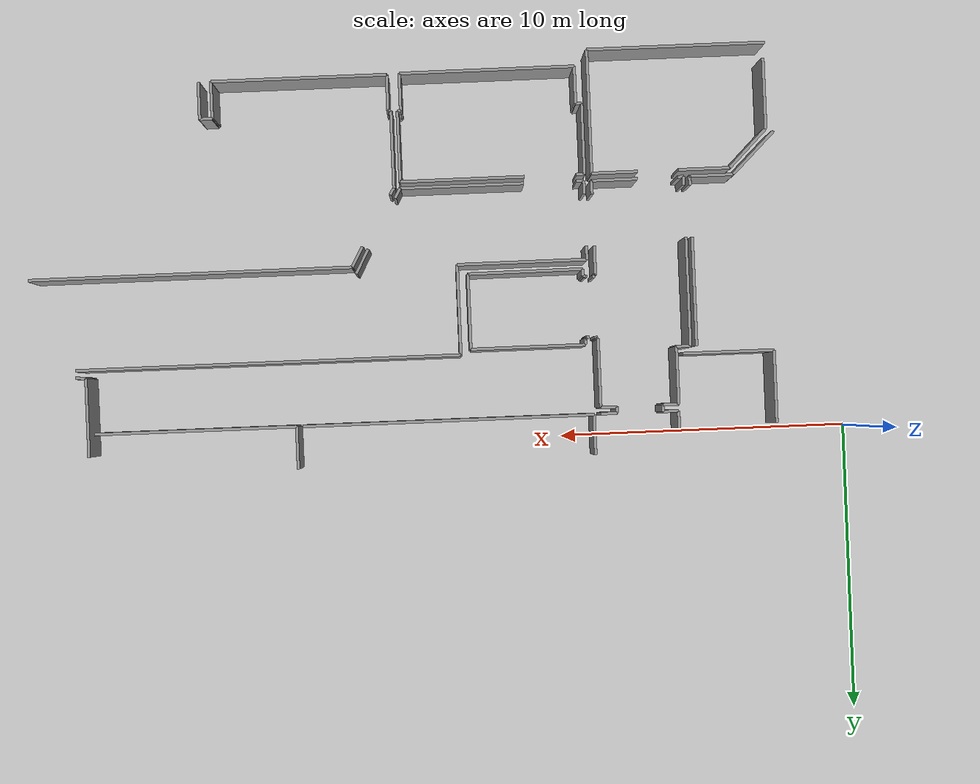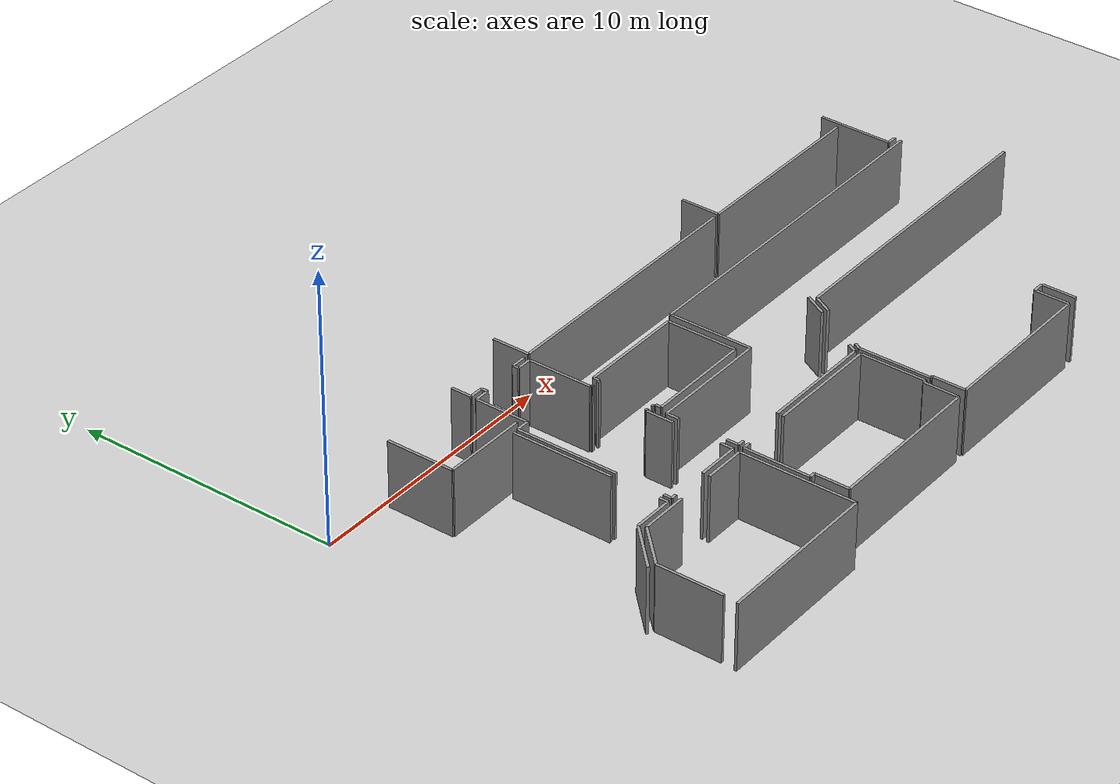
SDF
<sdf version="1.6">
 <world name="default">
  <model name="ground_plane">
   <static>1</static>
   <link name="link">
    <collision name="collision">
     <geometry><plane><normal>0 0 1</normal><size>100 100</size></plane></geometry>
     <surface><friction><ode><mu>100</mu><mu2>50</mu2></ode></friction></surface>
    </collision>
    <visual name="visual">
     <cast_shadows>0</cast_shadows>
     <geometry><plane><normal>0 0 1</normal><size>100 100</size></plane></geometry>
     <material>
      <script><uri>file://media/materials/scripts/gazebo.material</uri><name>Gazebo/Grey</name></script>
     </material>
    </visual>
   </link>
  </model>
  <model name="0510040943_A-40">
   <static>1</static>
   <link name="Wall_208">
    <collision name="Wall_208_Collision">
     <geometry><box><size>3.75323489116 0.1 2.5</size></box></geometry>
     <pose>1.87661744558 0 1.25 0 0 0</pose>
    </collision>
    <visual name="Wall_208_Visual">
     <pose>1.87661744558 0 1.25 0 0 0</pose>
     <geometry><box><size>3.75323489116 0.1 2.5</size></box></geometry>
     <material>
      <script><uri>file://media/materials/scripts/gazebo.material</uri><name>Gazebo/Grey</name></script>
      <ambient>1 1 1 1</ambient>
     </material>
    </visual>
    <pose>61.4806921398 -16.3586542853 0 0 0 -1.57079632679</pose>
   </link>
   <link name="Wall_209">
    <collision name="Wall_209_Collision">
     <geometry><box><size>0.314862739128 0.1 2.5</size></box></geometry>
     <pose>0.157431369564 0 1.25 0 0 0</pose>
    </collision>
    <visual name="Wall_209_Visual">
     <pose>0.157431369564 0 1.25 0 0 0</pose>
     <geometry><box><size>0.314862739128 0.1 2.5</size></box></geometry>
     <material>
      <script><uri>file://media/materials/scripts/gazebo.material</uri><name>Gazebo/Grey</name></script>
      <ambient>1 1 1 1</ambient>
     </material>
    </visual>
    <pose>61.4806921398 -21.9002131222 0 0 0 -1.57079632679</pose>
   </link>
   <link name="Wall_210">
    <collision name="Wall_210_Collision">
     <geometry><box><size>1.50948901406 0.1 2.5</size></box></geometry>
     <pose>0.754744507028 0 1.25 0 0 0</pose>
    </collision>
    <visual name="Wall_210_Visual">
     <pose>0.754744507028 0 1.25 0 0 0</pose>
     <geometry><box><size>1.50948901406 0.1 2.5</size></box></geometry>
     <material>
      <script><uri>file://media/materials/scripts/gazebo.material</uri><name>Gazebo/Grey</name></script>
      <ambient>1 1 1 1</ambient>
     </material>
    </visual>
    <pose>61.4806921398 -22.2150758614 0 0 0 3.14159265359</pose>
   </link>
   <link name="Wall_211">
    <collision name="Wall_211_Collision">
     <geometry><box><size>2.03349565865 0.1 2.5</size></box></geometry>
     <pose>1.01674782932 0 1.25 0 0 0</pose>
    </collision>
    <visual name="Wall_211_Visual">
     <pose>1.01674782932 0 1.25 0 0 0</pose>
     <geometry><box><size>2.03349565865 0.1 2.5</size></box></geometry>
     <material>
      <script><uri>file://media/materials/scripts/gazebo.material</uri><name>Gazebo/Grey</name></script>
      <ambient>1 1 1 1</ambient>
     </material>
    </visual>
    <pose>59.9712031258 -22.2150758614 0 0 0 -2.36162034898</pose>
   </link>
   <link name="Wall_292">
    <collision name="Wall_292_Collision">
     <geometry><box><size>0.301669457553 0.1 2.5</size></box></geometry>
     <pose>0.150834728777 0 1.25 0 0 0</pose>
    </collision>
    <visual name="Wall_292_Visual">
     <pose>0.150834728777 0 1.25 0 0 0</pose>
     <geometry><box><size>0.301669457553 0.1 2.5</size></box></geometry>
     <material>
      <script><uri>file://media/materials/scripts/gazebo.material</uri><name>Gazebo/Grey</name></script>
      <ambient>1 1 1 1</ambient>
     </material>
    </visual>
    <pose>61.6914040696 -22.2080986452 0 0 0 1.57079632679</pose>
   </link>
   <link name="Wall_293">
    <collision name="Wall_293_Collision">
     <geometry><box><size>3.75716750393 0.1 2.5</size></box></geometry>
     <pose>1.87858375197 0 1.25 0 0 0</pose>
    </collision>
    <visual name="Wall_293_Visual">
     <pose>1.87858375197 0 1.25 0 0 0</pose>
     <geometry><box><size>3.75716750393 0.1 2.5</size></box></geometry>
     <material>
      <script><uri>file://media/materials/scripts/gazebo.material</uri><name>Gazebo/Grey</name></script>
      <ambient>1 1 1 1</ambient>
     </material>
    </visual>
    <pose>61.6914040696 -20.1158217892 0 0 0 1.57079632679</pose>
   </link>
   <link name="Wall_294">
    <collision name="Wall_294_Collision">
     <geometry><box><size>0.487897701324 0.1 2.5</size></box></geometry>
     <pose>0.243948850662 0 1.25 0 0 0</pose>
    </collision>
    <visual name="Wall_294_Visual">
     <pose>0.243948850662 0 1.25 0 0 0</pose>
     <geometry><box><size>0.487897701324 0.1 2.5</size></box></geometry>
     <material>
      <script><uri>file://media/materials/scripts/gazebo.material</uri><name>Gazebo/Grey</name></script>
      <ambient>1 1 1 1</ambient>
     </material>
    </visual>
    <pose>61.6914040696 -16.3586542853 0 0 0 0.0</pose>
   </link>
   <link name="Wall_295">
    <collision name="Wall_295_Collision">
     <geometry><box><size>1.99040949916 0.1 2.5</size></box></geometry>
     <pose>0.995204749581 0 1.25 0 0 0</pose>
    </collision>
    <visual name="Wall_295_Visual">
     <pose>0.995204749581 0 1.25 0 0 0</pose>
     <geometry><box><size>1.99040949916 0.1 2.5</size></box></geometry>
     <material>
      <script><uri>file://media/materials/scripts/gazebo.material</uri><name>Gazebo/Grey</name></script>
      <ambient>1 1 1 1</ambient>
     </material>
    </visual>
    <pose>62.1793017709 -16.3586542853 0 0 0 1.57079632679</pose>
   </link>
   <link name="Wall_296">
    <collision name="Wall_296_Collision">
     <geometry><box><size>0.547140609936 0.1 2.5</size></box></geometry>
     <pose>0.273570304968 0 1.25 0 0 0</pose>
    </collision>
    <visual name="Wall_296_Visual">
     <pose>0.273570304968 0 1.25 0 0 0</pose>
     <geometry><box><size>0.547140609936 0.1 2.5</size></box></geometry>
     <material>
      <script><uri>file://media/materials/scripts/gazebo.material</uri><name>Gazebo/Grey</name></script>
      <ambient>1 1 1 1</ambient>
     </material>
    </visual>
    <pose>62.1793017709 -14.3682447861 0 0 0 0.0</pose>
   </link>
   <link name="Wall_297">
    <collision name="Wall_297_Collision">
     <geometry><box><size>0.232277870807 0.1 2.5</size></box></geometry>
     <pose>0.116138935404 0 1.25 0 0 0</pose>
    </collision>
    <visual name="Wall_297_Visual">
     <pose>0.116138935404 0 1.25 0 0 0</pose>
     <geometry><box><size>0.232277870807 0.1 2.5</size></box></geometry>
     <material>
      <script><uri>file://media/materials/scripts/gazebo.material</uri><name>Gazebo/Grey</name></script>
      <ambient>1 1 1 1</ambient>
     </material>
    </visual>
    <pose>62.7264423809 -14.3682447861 0 0 0 1.57079632679</pose>
   </link>
   <link name="Wall_298">
    <collision name="Wall_298_Collision">
     <geometry><box><size>0.530775866443 0.1 2.5</size></box></geometry>
     <pose>0.265387933222 0 1.25 0 0 0</pose>
    </collision>
    <visual name="Wall_298_Visual">
     <pose>0.265387933222 0 1.25 0 0 0</pose>
     <geometry><box><size>0.530775866443 0.1 2.5</size></box></geometry>
     <material>
      <script><uri>file://media/materials/scripts/gazebo.material</uri><name>Gazebo/Grey</name></script>
      <ambient>1 1 1 1</ambient>
     </material>
    </visual>
    <pose>62.7264423809 -14.1359669153 0 0 0 3.14159265359</pose>
   </link>
   <link name="Wall_299">
    <collision name="Wall_299_Collision">
     <geometry><box><size>0.767113208505 0.1 2.5</size></box></geometry>
     <pose>0.383556604252 0 1.25 0 0 0</pose>
    </collision>
    <visual name="Wall_299_Visual">
     <pose>0.383556604252 0 1.25 0 0 0</pose>
     <geometry><box><size>0.767113208505 0.1 2.5</size></box></geometry>
     <material>
      <script><uri>file://media/materials/scripts/gazebo.material</uri><name>Gazebo/Grey</name></script>
      <ambient>1 1 1 1</ambient>
     </material>
    </visual>
    <pose>62.1956665144 -14.1359669153 0 0 0 1.57079632679</pose>
   </link>
   <link name="Wall_312">
    <collision name="Wall_312_Collision">
     <geometry><box><size>0.559699599127 0.1 2.5</size></box></geometry>
     <pose>0.279849799564 0 1.25 0 0 0</pose>
    </collision>
    <visual name="Wall_312_Visual">
     <pose>0.279849799564 0 1.25 0 0 0</pose>
     <geometry><box><size>0.559699599127 0.1 2.5</size></box></geometry>
     <material>
      <script><uri>file://media/materials/scripts/gazebo.material</uri><name>Gazebo/Grey</name></script>
      <ambient>1 1 1 1</ambient>
     </material>
    </visual>
    <pose>64.8671791749 -14.1467498858 0 0 0 3.14159265359</pose>
   </link>
   <link name="Wall_313">
    <collision name="Wall_313_Collision">
     <geometry><box><size>0.213122240828 0.1 2.5</size></box></geometry>
     <pose>0.106561120414 0 1.25 0 0 0</pose>
    </collision>
    <visual name="Wall_313_Visual">
     <pose>0.106561120414 0 1.25 0 0 0</pose>
     <geometry><box><size>0.213122240828 0.1 2.5</size></box></geometry>
     <material>
      <script><uri>file://media/materials/scripts/gazebo.material</uri><name>Gazebo/Grey</name></script>
      <ambient>1 1 1 1</ambient>
     </material>
    </visual>
    <pose>64.3074795758 -14.1467498858 0 0 0 -1.57079632679</pose>
   </link>
   <link name="Wall_314">
    <collision name="Wall_314_Collision">
     <geometry><box><size>0.564900796671 0.1 2.5</size></box></geometry>
     <pose>0.282450398336 0 1.25 0 0 0</pose>
    </collision>
    <visual name="Wall_314_Visual">
     <pose>0.282450398336 0 1.25 0 0 0</pose>
     <geometry><box><size>0.564900796671 0.1 2.5</size></box></geometry>
     <material>
      <script><uri>file://media/materials/scripts/gazebo.material</uri><name>Gazebo/Grey</name></script>
      <ambient>1 1 1 1</ambient>
     </material>
    </visual>
    <pose>64.3074795758 -14.3598721267 0 0 0 0.0</pose>
   </link>
   <link name="Wall_315">
    <collision name="Wall_315_Collision">
     <geometry><box><size>2.39178971939 0.1 2.5</size></box></geometry>
     <pose>1.19589485969 0 1.25 0 0 0</pose>
    </collision>
    <visual name="Wall_315_Visual">
     <pose>1.19589485969 0 1.25 0 0 0</pose>
     <geometry><box><size>2.39178971939 0.1 2.5</size></box></geometry>
     <material>
      <script><uri>file://media/materials/scripts/gazebo.material</uri><name>Gazebo/Grey</name></script>
      <ambient>1 1 1 1</ambient>
     </material>
    </visual>
    <pose>64.8723803725 -14.3598721267 0 0 0 -1.57079632679</pose>
   </link>
   <link name="Wall_316">
    <collision name="Wall_316_Collision">
     <geometry><box><size>0.0627949459583 0.1 2.5</size></box></geometry>
     <pose>0.0313974729791 0 1.25 0 0 0</pose>
    </collision>
    <visual name="Wall_316_Visual">
     <pose>0.0313974729791 0 1.25 0 0 0</pose>
     <geometry><box><size>0.0627949459583 0.1 2.5</size></box></geometry>
     <material>
      <script><uri>file://media/materials/scripts/gazebo.material</uri><name>Gazebo/Grey</name></script>
      <ambient>1 1 1 1</ambient>
     </material>
    </visual>
    <pose>64.8723803725 -16.751661846 0 0 0 0.0</pose>
   </link>
   <link name="Wall_317">
    <collision name="Wall_317_Collision">
     <geometry><box><size>0.0819505759375 0.1 2.5</size></box></geometry>
     <pose>0.0409752879687 0 1.25 0 0 0</pose>
    </collision>
    <visual name="Wall_317_Visual">
     <pose>0.0409752879687 0 1.25 0 0 0</pose>
     <geometry><box><size>0.0819505759375 0.1 2.5</size></box></geometry>
     <material>
      <script><uri>file://media/materials/scripts/gazebo.material</uri><name>Gazebo/Grey</name></script>
      <ambient>1 1 1 1</ambient>
     </material>
    </visual>
    <pose>64.9351753184 -16.751661846 0 0 0 -1.57079632679</pose>
   </link>
   <link name="Wall_318">
    <collision name="Wall_318_Collision">
     <geometry><box><size>0.0986958948597 0.1 2.5</size></box></geometry>
     <pose>0.0493479474299 0 1.25 0 0 0</pose>
    </collision>
    <visual name="Wall_318_Visual">
     <pose>0.0493479474299 0 1.25 0 0 0</pose>
     <geometry><box><size>0.0986958948597 0.1 2.5</size></box></geometry>
     <material>
      <script><uri>file://media/materials/scripts/gazebo.material</uri><name>Gazebo/Grey</name></script>
      <ambient>1 1 1 1</ambient>
     </material>
    </visual>
    <pose>64.9351753184 -18.8351854671 0 0 0 -1.57079632679</pose>
   </link>
   <link name="Wall_319">
    <collision name="Wall_319_Collision">
     <geometry><box><size>0.0627949459583 0.1 2.5</size></box></geometry>
     <pose>0.0313974729791 0 1.25 0 0 0</pose>
    </collision>
    <visual name="Wall_319_Visual">
     <pose>0.0313974729791 0 1.25 0 0 0</pose>
     <geometry><box><size>0.0627949459583 0.1 2.5</size></box></geometry>
     <material>
      <script><uri>file://media/materials/scripts/gazebo.material</uri><name>Gazebo/Grey</name></script>
      <ambient>1 1 1 1</ambient>
     </material>
    </visual>
    <pose>64.9351753184 -18.933881362 0 0 0 3.14159265359</pose>
   </link>
   <link name="Wall_320">
    <collision name="Wall_320_Collision">
     <geometry><box><size>1.00471913533 0.1 2.5</size></box></geometry>
     <pose>0.502359567666 0 1.25 0 0 0</pose>
    </collision>
    <visual name="Wall_320_Visual">
     <pose>0.502359567666 0 1.25 0 0 0</pose>
     <geometry><box><size>1.00471913533 0.1 2.5</size></box></geometry>
     <material>
      <script><uri>file://media/materials/scripts/gazebo.material</uri><name>Gazebo/Grey</name></script>
      <ambient>1 1 1 1</ambient>
     </material>
    </visual>
    <pose>64.8723803725 -18.933881362 0 0 0 -1.57079632679</pose>
   </link>
   <link name="Wall_321">
    <collision name="Wall_321_Collision">
     <geometry><box><size>0.471532957832 0.1 2.5</size></box></geometry>
     <pose>0.235766478916 0 1.25 0 0 0</pose>
    </collision>
    <visual name="Wall_321_Visual">
     <pose>0.235766478916 0 1.25 0 0 0</pose>
     <geometry><box><size>0.471532957832 0.1 2.5</size></box></geometry>
     <material>
      <script><uri>file://media/materials/scripts/gazebo.material</uri><name>Gazebo/Grey</name></script>
      <ambient>1 1 1 1</ambient>
     </material>
    </visual>
    <pose>64.8723803725 -21.7260364338 0 0 0 -1.57079632679</pose>
   </link>
   <link name="Wall_322">
    <collision name="Wall_322_Collision">
     <geometry><box><size>1.58496980768 0.1 2.5</size></box></geometry>
     <pose>0.792484903841 0 1.25 0 0 0</pose>
    </collision>
    <visual name="Wall_322_Visual">
     <pose>0.792484903841 0 1.25 0 0 0</pose>
     <geometry><box><size>1.58496980768 0.1 2.5</size></box></geometry>
     <material>
      <script><uri>file://media/materials/scripts/gazebo.material</uri><name>Gazebo/Grey</name></script>
      <ambient>1 1 1 1</ambient>
     </material>
    </visual>
    <pose>64.8723803725 -22.1975693916 0 0 0 3.14159265359</pose>
   </link>
   <link name="Wall_323">
    <collision name="Wall_323_Collision">
     <geometry><box><size>0.204006614323 0.1 2.5</size></box></geometry>
     <pose>0.102003307161 0 1.25 0 0 0</pose>
    </collision>
    <visual name="Wall_323_Visual">
     <pose>0.102003307161 0 1.25 0 0 0</pose>
     <geometry><box><size>0.204006614323 0.1 2.5</size></box></geometry>
     <material>
      <script><uri>file://media/materials/scripts/gazebo.material</uri><name>Gazebo/Grey</name></script>
      <ambient>1 1 1 1</ambient>
     </material>
    </visual>
    <pose>61.8951387832 -22.1975693916 0 0 0 -3.08995739704</pose>
   </link>
   <link name="Wall_326">
    <collision name="Wall_326_Collision">
     <geometry><box><size>2.4472268737 0.1 2.5</size></box></geometry>
     <pose>1.22361343685 0 1.25 0 0 0</pose>
    </collision>
    <visual name="Wall_326_Visual">
     <pose>1.22361343685 0 1.25 0 0 0</pose>
     <geometry><box><size>2.4472268737 0.1 2.5</size></box></geometry>
     <material>
      <script><uri>file://media/materials/scripts/gazebo.material</uri><name>Gazebo/Grey</name></script>
      <ambient>1 1 1 1</ambient>
     </material>
    </visual>
    <pose>58.792053585 -26.1871416248 0 0 0 1.57079632679</pose>
   </link>
   <link name="Wall_327">
    <collision name="Wall_327_Collision">
     <geometry><box><size>1.82401592795 0.1 2.5</size></box></geometry>
     <pose>0.912007963974 0 1.25 0 0 0</pose>
    </collision>
    <visual name="Wall_327_Visual">
     <pose>0.912007963974 0 1.25 0 0 0</pose>
     <geometry><box><size>1.82401592795 0.1 2.5</size></box></geometry>
     <material>
      <script><uri>file://media/materials/scripts/gazebo.material</uri><name>Gazebo/Grey</name></script>
      <ambient>1 1 1 1</ambient>
     </material>
    </visual>
    <pose>58.792053585 -23.7399147511 0 0 0 0.787857094214</pose>
   </link>
   <link name="Wall_328">
    <collision name="Wall_328_Collision">
     <geometry><box><size>1.78274217283 0.1 2.5</size></box></geometry>
     <pose>0.891371086416 0 1.25 0 0 0</pose>
    </collision>
    <visual name="Wall_328_Visual">
     <pose>0.891371086416 0 1.25 0 0 0</pose>
     <geometry><box><size>1.78274217283 0.1 2.5</size></box></geometry>
     <material>
      <script><uri>file://media/materials/scripts/gazebo.material</uri><name>Gazebo/Grey</name></script>
      <ambient>1 1 1 1</ambient>
     </material>
    </visual>
    <pose>60.0786522555 -22.4469731567 0 0 0 0.0</pose>
   </link>
   <link name="Wall_329">
    <collision name="Wall_329_Collision">
     <geometry><box><size>1.57951489319 0.1 2.5</size></box></geometry>
     <pose>0.789757446593 0 1.25 0 0 0</pose>
    </collision>
    <visual name="Wall_329_Visual">
     <pose>0.789757446593 0 1.25 0 0 0</pose>
     <geometry><box><size>1.57951489319 0.1 2.5</size></box></geometry>
     <material>
      <script><uri>file://media/materials/scripts/gazebo.material</uri><name>Gazebo/Grey</name></script>
      <ambient>1 1 1 1</ambient>
     </material>
    </visual>
    <pose>63.2763738773 -22.4469731567 0 0 0 0.0</pose>
   </link>
   <link name="Wall_330">
    <collision name="Wall_330_Collision">
     <geometry><box><size>4.27525752271 0.1 2.5</size></box></geometry>
     <pose>2.13762876135 0 1.25 0 0 0</pose>
    </collision>
    <visual name="Wall_330_Visual">
     <pose>2.13762876135 0 1.25 0 0 0</pose>
     <geometry><box><size>4.27525752271 0.1 2.5</size></box></geometry>
     <material>
      <script><uri>file://media/materials/scripts/gazebo.material</uri><name>Gazebo/Grey</name></script>
      <ambient>1 1 1 1</ambient>
     </material>
    </visual>
    <pose>64.8558887705 -22.4469731567 0 0 0 -1.57079632679</pose>
   </link>
   <link name="Wall_331">
    <collision name="Wall_331_Collision">
     <geometry><box><size>6.15213099242 0.1 2.5</size></box></geometry>
     <pose>3.07606549621 0 1.25 0 0 0</pose>
    </collision>
    <visual name="Wall_331_Visual">
     <pose>3.07606549621 0 1.25 0 0 0</pose>
     <geometry><box><size>6.15213099242 0.1 2.5</size></box></geometry>
     <material>
      <script><uri>file://media/materials/scripts/gazebo.material</uri><name>Gazebo/Grey</name></script>
      <ambient>1 1 1 1</ambient>
     </material>
    </visual>
    <pose>64.8558887705 -26.7222306795 0 0 0 3.140726603</pose>
   </link>
   <link name="Wall_332">
    <collision name="Wall_332_Collision">
     <geometry><box><size>1.2845689349 0.1 2.5</size></box></geometry>
     <pose>0.642284467448 0 1.25 0 0 0</pose>
    </collision>
    <visual name="Wall_332_Visual">
     <pose>0.642284467448 0 1.25 0 0 0</pose>
     <geometry><box><size>1.2845689349 0.1 2.5</size></box></geometry>
     <material>
      <script><uri>file://media/materials/scripts/gazebo.material</uri><name>Gazebo/Grey</name></script>
      <ambient>1 1 1 1</ambient>
     </material>
    </visual>
    <pose>65.3092809662 -26.1676054194 0 0 0 1.57079632679</pose>
   </link>
   <link name="Wall_333">
    <collision name="Wall_333_Collision">
     <geometry><box><size>0.208555335668 0.1 2.5</size></box></geometry>
     <pose>0.104277667834 0 1.25 0 0 0</pose>
    </collision>
    <visual name="Wall_333_Visual">
     <pose>0.104277667834 0 1.25 0 0 0</pose>
     <geometry><box><size>0.208555335668 0.1 2.5</size></box></geometry>
     <material>
      <script><uri>file://media/materials/scripts/gazebo.material</uri><name>Gazebo/Grey</name></script>
      <ambient>1 1 1 1</ambient>
     </material>
    </visual>
    <pose>65.3092809662 -24.8830364845 0 0 0 3.14159265359</pose>
   </link>
   <link name="Wall_334">
    <collision name="Wall_334_Collision">
     <geometry><box><size>2.45496524078 0.1 2.5</size></box></geometry>
     <pose>1.22748262039 0 1.25 0 0 0</pose>
    </collision>
    <visual name="Wall_334_Visual">
     <pose>1.22748262039 0 1.25 0 0 0</pose>
     <geometry><box><size>2.45496524078 0.1 2.5</size></box></geometry>
     <material>
      <script><uri>file://media/materials/scripts/gazebo.material</uri><name>Gazebo/Grey</name></script>
      <ambient>1 1 1 1</ambient>
     </material>
    </visual>
    <pose>65.1007256305 -24.8830364845 0 0 0 1.57079632679</pose>
   </link>
   <link name="Wall_335">
    <collision name="Wall_335_Collision">
     <geometry><box><size>0.288603034455 0.1 2.5</size></box></geometry>
     <pose>0.144301517227 0 1.25 0 0 0</pose>
    </collision>
    <visual name="Wall_335_Visual">
     <pose>0.144301517227 0 1.25 0 0 0</pose>
     <geometry><box><size>0.288603034455 0.1 2.5</size></box></geometry>
     <material>
      <script><uri>file://media/materials/scripts/gazebo.material</uri><name>Gazebo/Grey</name></script>
      <ambient>1 1 1 1</ambient>
     </material>
    </visual>
    <pose>65.1007256305 -22.4280712437 0 0 0 0.0</pose>
   </link>
   <link name="Wall_336">
    <collision name="Wall_336_Collision">
     <geometry><box><size>4.28007814482 0.1 2.5</size></box></geometry>
     <pose>2.14003907241 0 1.25 0 0 0</pose>
    </collision>
    <visual name="Wall_336_Visual">
     <pose>2.14003907241 0 1.25 0 0 0</pose>
     <geometry><box><size>4.28007814482 0.1 2.5</size></box></geometry>
     <material>
      <script><uri>file://media/materials/scripts/gazebo.material</uri><name>Gazebo/Grey</name></script>
      <ambient>1 1 1 1</ambient>
     </material>
    </visual>
    <pose>67.1852641193 -22.4280712437 0 0 0 0.0</pose>
   </link>
   <link name="Wall_337">
    <collision name="Wall_337_Collision">
     <geometry><box><size>2.44583143046 0.1 2.5</size></box></geometry>
     <pose>1.22291571523 0 1.25 0 0 0</pose>
    </collision>
    <visual name="Wall_337_Visual">
     <pose>1.22291571523 0 1.25 0 0 0</pose>
     <geometry><box><size>2.44583143046 0.1 2.5</size></box></geometry>
     <material>
      <script><uri>file://media/materials/scripts/gazebo.material</uri><name>Gazebo/Grey</name></script>
      <ambient>1 1 1 1</ambient>
     </material>
    </visual>
    <pose>71.4653422642 -22.4280712437 0 0 0 -1.57079632679</pose>
   </link>
   <link name="Wall_338">
    <collision name="Wall_338_Collision">
     <geometry><box><size>0.117090373979 0.1 2.5</size></box></geometry>
     <pose>0.0585451869894 0 1.25 0 0 0</pose>
    </collision>
    <visual name="Wall_338_Visual">
     <pose>0.0585451869894 0 1.25 0 0 0</pose>
     <geometry><box><size>0.117090373979 0.1 2.5</size></box></geometry>
     <material>
      <script><uri>file://media/materials/scripts/gazebo.material</uri><name>Gazebo/Grey</name></script>
      <ambient>1 1 1 1</ambient>
     </material>
    </visual>
    <pose>71.4653422642 -24.8739026742 0 0 0 3.14159265359</pose>
   </link>
   <link name="Wall_339">
    <collision name="Wall_339_Collision">
     <geometry><box><size>1.29103871721 0.1 2.5</size></box></geometry>
     <pose>0.645519358604 0 1.25 0 0 0</pose>
    </collision>
    <visual name="Wall_339_Visual">
     <pose>0.645519358604 0 1.25 0 0 0</pose>
     <geometry><box><size>1.29103871721 0.1 2.5</size></box></geometry>
     <material>
      <script><uri>file://media/materials/scripts/gazebo.material</uri><name>Gazebo/Grey</name></script>
      <ambient>1 1 1 1</ambient>
     </material>
    </visual>
    <pose>71.3482518902 -24.8739026742 0 0 0 -1.57079632679</pose>
   </link>
   <link name="Wall_340">
    <collision name="Wall_340_Collision">
     <geometry><box><size>6.03897151164 0.1 2.5</size></box></geometry>
     <pose>3.01948575582 0 1.25 0 0 0</pose>
    </collision>
    <visual name="Wall_340_Visual">
     <pose>3.01948575582 0 1.25 0 0 0</pose>
     <geometry><box><size>6.03897151164 0.1 2.5</size></box></geometry>
     <material>
      <script><uri>file://media/materials/scripts/gazebo.material</uri><name>Gazebo/Grey</name></script>
      <ambient>1 1 1 1</ambient>
     </material>
    </visual>
    <pose>71.3482518902 -26.1649413914 0 0 0 -3.14115151422</pose>
   </link>
   <link name="Wall_341">
    <collision name="Wall_341_Collision">
     <geometry><box><size>0.226949814787 0.1 2.5</size></box></geometry>
     <pose>0.113474907393 0 1.25 0 0 0</pose>
    </collision>
    <visual name="Wall_341_Visual">
     <pose>0.113474907393 0 1.25 0 0 0</pose>
     <geometry><box><size>0.226949814787 0.1 2.5</size></box></geometry>
     <material>
      <script><uri>file://media/materials/scripts/gazebo.material</uri><name>Gazebo/Grey</name></script>
      <ambient>1 1 1 1</ambient>
     </material>
    </visual>
    <pose>65.3063632212 -19.1656517989 0 0 0 1.57079632679</pose>
   </link>
   <link name="Wall_342">
    <collision name="Wall_342_Collision">
     <geometry><box><size>0.0891815091084 0.1 2.5</size></box></geometry>
     <pose>0.0445907545542 0 1.25 0 0 0</pose>
    </collision>
    <visual name="Wall_342_Visual">
     <pose>0.0445907545542 0 1.25 0 0 0</pose>
     <geometry><box><size>0.0891815091084 0.1 2.5</size></box></geometry>
     <material>
      <script><uri>file://media/materials/scripts/gazebo.material</uri><name>Gazebo/Grey</name></script>
      <ambient>1 1 1 1</ambient>
     </material>
    </visual>
    <pose>65.3063632212 -18.9387019841 0 0 0 3.14159265359</pose>
   </link>
   <link name="Wall_343">
    <collision name="Wall_343_Collision">
     <geometry><box><size>0.0763688029634 0.1 2.5</size></box></geometry>
     <pose>0.0381844014817 0 1.25 0 0 0</pose>
    </collision>
    <visual name="Wall_343_Visual">
     <pose>0.0381844014817 0 1.25 0 0 0</pose>
     <geometry><box><size>0.0763688029634 0.1 2.5</size></box></geometry>
     <material>
      <script><uri>file://media/materials/scripts/gazebo.material</uri><name>Gazebo/Grey</name></script>
      <ambient>1 1 1 1</ambient>
     </material>
    </visual>
    <pose>65.2171817121 -18.9387019841 0 0 0 1.57079632679</pose>
   </link>
   <link name="Wall_344">
    <collision name="Wall_344_Collision">
     <geometry><box><size>0.0946364236058 0.1 2.5</size></box></geometry>
     <pose>0.0473182118029 0 1.25 0 0 0</pose>
    </collision>
    <visual name="Wall_344_Visual">
     <pose>0.0473182118029 0 1.25 0 0 0</pose>
     <geometry><box><size>0.0946364236058 0.1 2.5</size></box></geometry>
     <material>
      <script><uri>file://media/materials/scripts/gazebo.material</uri><name>Gazebo/Grey</name></script>
      <ambient>1 1 1 1</ambient>
     </material>
    </visual>
    <pose>65.2171817121 -16.8588572588 0 0 0 1.57079632679</pose>
   </link>
   <link name="Wall_345">
    <collision name="Wall_345_Collision">
     <geometry><box><size>0.0900695184452 0.1 2.5</size></box></geometry>
     <pose>0.0450347592226 0 1.25 0 0 0</pose>
    </collision>
    <visual name="Wall_345_Visual">
     <pose>0.0450347592226 0 1.25 0 0 0</pose>
     <geometry><box><size>0.0900695184452 0.1 2.5</size></box></geometry>
     <material>
      <script><uri>file://media/materials/scripts/gazebo.material</uri><name>Gazebo/Grey</name></script>
      <ambient>1 1 1 1</ambient>
     </material>
    </visual>
    <pose>65.2171817121 -16.7642208352 0 0 0 0.0</pose>
   </link>
   <link name="Wall_346">
    <collision name="Wall_346_Collision">
     <geometry><box><size>0.214390825595 0.1 2.5</size></box></geometry>
     <pose>0.107195412797 0 1.25 0 0 0</pose>
    </collision>
    <visual name="Wall_346_Visual">
     <pose>0.107195412797 0 1.25 0 0 0</pose>
     <geometry><box><size>0.214390825595 0.1 2.5</size></box></geometry>
     <material>
      <script><uri>file://media/materials/scripts/gazebo.material</uri><name>Gazebo/Grey</name></script>
      <ambient>1 1 1 1</ambient>
     </material>
    </visual>
    <pose>65.3072512305 -16.7642208352 0 0 0 1.57079632679</pose>
   </link>
   <link name="Wall_347">
    <collision name="Wall_347_Collision">
     <geometry><box><size>3.96090221749 0.1 2.5</size></box></geometry>
     <pose>1.98045110874 0 1.25 0 0 0</pose>
    </collision>
    <visual name="Wall_347_Visual">
     <pose>1.98045110874 0 1.25 0 0 0</pose>
     <geometry><box><size>3.96090221749 0.1 2.5</size></box></geometry>
     <material>
      <script><uri>file://media/materials/scripts/gazebo.material</uri><name>Gazebo/Grey</name></script>
      <ambient>1 1 1 1</ambient>
     </material>
    </visual>
    <pose>65.3072512305 -16.5498300096 0 0 0 0.0</pose>
   </link>
   <link name="Wall_348">
    <collision name="Wall_348_Collision">
     <geometry><box><size>2.60275536611 0.1 2.5</size></box></geometry>
     <pose>1.30137768306 0 1.25 0 0 0</pose>
    </collision>
    <visual name="Wall_348_Visual">
     <pose>1.30137768306 0 1.25 0 0 0</pose>
     <geometry><box><size>2.60275536611 0.1 2.5</size></box></geometry>
     <material>
      <script><uri>file://media/materials/scripts/gazebo.material</uri><name>Gazebo/Grey</name></script>
      <ambient>1 1 1 1</ambient>
     </material>
    </visual>
    <pose>69.268153448 -16.5498300096 0 0 0 -1.57079632679</pose>
   </link>
   <link name="Wall_349">
    <collision name="Wall_349_Collision">
     <geometry><box><size>3.96181177402 0.1 2.5</size></box></geometry>
     <pose>1.98090588701 0 1.25 0 0 0</pose>
    </collision>
    <visual name="Wall_349_Visual">
     <pose>1.98090588701 0 1.25 0 0 0</pose>
     <geometry><box><size>3.96181177402 0.1 2.5</size></box></geometry>
     <material>
      <script><uri>file://media/materials/scripts/gazebo.material</uri><name>Gazebo/Grey</name></script>
      <ambient>1 1 1 1</ambient>
     </material>
    </visual>
    <pose>69.268153448 -19.1525853758 0 0 0 -3.13829455476</pose>
   </link>
   <link name="Wall_350">
    <collision name="Wall_350_Collision">
     <geometry><box><size>0.460369411884 0.1 2.5</size></box></geometry>
     <pose>0.230184705942 0 1.25 0 0 0</pose>
    </collision>
    <visual name="Wall_350_Visual">
     <pose>0.230184705942 0 1.25 0 0 0</pose>
     <geometry><box><size>0.460369411884 0.1 2.5</size></box></geometry>
     <material>
      <script><uri>file://media/materials/scripts/gazebo.material</uri><name>Gazebo/Grey</name></script>
      <ambient>1 1 1 1</ambient>
     </material>
    </visual>
    <pose>65.1370071548 -22.2135535596 0 0 0 1.57079632679</pose>
   </link>
   <link name="Wall_351">
    <collision name="Wall_351_Collision">
     <geometry><box><size>0.460496270361 0.1 2.5</size></box></geometry>
     <pose>0.23024813518 0 1.25 0 0 0</pose>
    </collision>
    <visual name="Wall_351_Visual">
     <pose>0.23024813518 0 1.25 0 0 0</pose>
     <geometry><box><size>0.460496270361 0.1 2.5</size></box></geometry>
     <material>
      <script><uri>file://media/materials/scripts/gazebo.material</uri><name>Gazebo/Grey</name></script>
      <ambient>1 1 1 1</ambient>
     </material>
    </visual>
    <pose>65.1370071548 -19.9496371848 0 0 0 1.57079632679</pose>
   </link>
   <link name="Wall_352">
    <collision name="Wall_352_Collision">
     <geometry><box><size>4.48419343381 0.1 2.5</size></box></geometry>
     <pose>2.2420967169 0 1.25 0 0 0</pose>
    </collision>
    <visual name="Wall_352_Visual">
     <pose>2.2420967169 0 1.25 0 0 0</pose>
     <geometry><box><size>4.48419343381 0.1 2.5</size></box></geometry>
     <material>
      <script><uri>file://media/materials/scripts/gazebo.material</uri><name>Gazebo/Grey</name></script>
      <ambient>1 1 1 1</ambient>
     </material>
    </visual>
    <pose>65.1370071548 -19.4891409144 0 0 0 0.0</pose>
   </link>
   <link name="Wall_353">
    <collision name="Wall_353_Collision">
     <geometry><box><size>3.1158979043 0.1 2.5</size></box></geometry>
     <pose>1.55794895215 0 1.25 0 0 0</pose>
    </collision>
    <visual name="Wall_353_Visual">
     <pose>1.55794895215 0 1.25 0 0 0</pose>
     <geometry><box><size>3.1158979043 0.1 2.5</size></box></geometry>
     <material>
      <script><uri>file://media/materials/scripts/gazebo.material</uri><name>Gazebo/Grey</name></script>
      <ambient>1 1 1 1</ambient>
     </material>
    </visual>
    <pose>69.6212005886 -19.4891409144 0 0 0 1.57079632679</pose>
   </link>
   <link name="Wall_354">
    <collision name="Wall_354_Collision">
     <geometry><box><size>13.3045364591 0.1 2.5</size></box></geometry>
     <pose>6.65226822956 0 1.25 0 0 0</pose>
    </collision>
    <visual name="Wall_354_Visual">
     <pose>6.65226822956 0 1.25 0 0 0</pose>
     <geometry><box><size>13.3045364591 0.1 2.5</size></box></geometry>
     <material>
      <script><uri>file://media/materials/scripts/gazebo.material</uri><name>Gazebo/Grey</name></script>
      <ambient>1 1 1 1</ambient>
     </material>
    </visual>
    <pose>69.6212005886 -16.3732430101 0 0 0 0.0</pose>
   </link>
   <link name="Wall_357">
    <collision name="Wall_357_Collision">
     <geometry><box><size>0.946027916308 0.1 2.5</size></box></geometry>
     <pose>0.473013958154 0 1.25 0 0 0</pose>
    </collision>
    <visual name="Wall_357_Visual">
     <pose>0.473013958154 0 1.25 0 0 0</pose>
     <geometry><box><size>0.946027916308 0.1 2.5</size></box></geometry>
     <material>
      <script><uri>file://media/materials/scripts/gazebo.material</uri><name>Gazebo/Grey</name></script>
      <ambient>1 1 1 1</ambient>
     </material>
    </visual>
    <pose>73.1128533009 -19.3194042726 0 0 0 -2.06755315701</pose>
   </link>
   <link name="Wall_358">
    <collision name="Wall_358_Collision">
     <geometry><box><size>0.389584385353 0.1 2.5</size></box></geometry>
     <pose>0.194792192677 0 1.25 0 0 0</pose>
    </collision>
    <visual name="Wall_358_Visual">
     <pose>0.194792192677 0 1.25 0 0 0</pose>
     <geometry><box><size>0.389584385353 0.1 2.5</size></box></geometry>
     <material>
      <script><uri>file://media/materials/scripts/gazebo.material</uri><name>Gazebo/Grey</name></script>
      <ambient>1 1 1 1</ambient>
     </material>
    </visual>
    <pose>71.6601968844 -21.8639315979 0 0 0 -2.07625019987</pose>
   </link>
   <link name="Wall_359">
    <collision name="Wall_359_Collision">
     <geometry><box><size>4.26485512762 0.1 2.5</size></box></geometry>
     <pose>2.13242756381 0 1.25 0 0 0</pose>
    </collision>
    <visual name="Wall_359_Visual">
     <pose>2.13242756381 0 1.25 0 0 0</pose>
     <geometry><box><size>4.26485512762 0.1 2.5</size></box></geometry>
     <material>
      <script><uri>file://media/materials/scripts/gazebo.material</uri><name>Gazebo/Grey</name></script>
      <ambient>1 1 1 1</ambient>
     </material>
    </visual>
    <pose>71.4715583295 -22.2048003248 0 0 0 3.14159265359</pose>
   </link>
   <link name="Wall_360">
    <collision name="Wall_360_Collision">
     <geometry><box><size>0.263757200116 0.1 2.5</size></box></geometry>
     <pose>0.131878600058 0 1.25 0 0 0</pose>
    </collision>
    <visual name="Wall_360_Visual">
     <pose>0.131878600058 0 1.25 0 0 0</pose>
     <geometry><box><size>0.263757200116 0.1 2.5</size></box></geometry>
     <material>
      <script><uri>file://media/materials/scripts/gazebo.material</uri><name>Gazebo/Grey</name></script>
      <ambient>1 1 1 1</ambient>
     </material>
    </visual>
    <pose>65.4006190694 -22.2048003248 0 0 0 -3.10839984435</pose>
   </link>
   <link name="Wall_361">
    <collision name="Wall_361_Collision">
     <geometry><box><size>1.2475262597 0.1 2.5</size></box></geometry>
     <pose>0.623763129852 0 1.25 0 0 0</pose>
    </collision>
    <visual name="Wall_361_Visual">
     <pose>0.623763129852 0 1.25 0 0 0</pose>
     <geometry><box><size>1.2475262597 0.1 2.5</size></box></geometry>
     <material>
      <script><uri>file://media/materials/scripts/gazebo.material</uri><name>Gazebo/Grey</name></script>
      <ambient>1 1 1 1</ambient>
     </material>
    </visual>
    <pose>71.7835033237 -26.1432485919 0 0 0 1.57079632679</pose>
   </link>
   <link name="Wall_362">
    <collision name="Wall_362_Collision">
     <geometry><box><size>0.0943827066525 0.1 2.5</size></box></geometry>
     <pose>0.0471913533262 0 1.25 0 0 0</pose>
    </collision>
    <visual name="Wall_362_Visual">
     <pose>0.0471913533262 0 1.25 0 0 0</pose>
     <geometry><box><size>0.0943827066525 0.1 2.5</size></box></geometry>
     <material>
      <script><uri>file://media/materials/scripts/gazebo.material</uri><name>Gazebo/Grey</name></script>
      <ambient>1 1 1 1</ambient>
     </material>
    </visual>
    <pose>71.7835033237 -24.8957223322 0 0 0 3.14159265359</pose>
   </link>
   <link name="Wall_363">
    <collision name="Wall_363_Collision">
     <geometry><box><size>2.67265438677 0.1 2.5</size></box></geometry>
     <pose>1.33632719338 0 1.25 0 0 0</pose>
    </collision>
    <visual name="Wall_363_Visual">
     <pose>1.33632719338 0 1.25 0 0 0</pose>
     <geometry><box><size>2.67265438677 0.1 2.5</size></box></geometry>
     <material>
      <script><uri>file://media/materials/scripts/gazebo.material</uri><name>Gazebo/Grey</name></script>
      <ambient>1 1 1 1</ambient>
     </material>
    </visual>
    <pose>71.689120617 -24.8957223322 0 0 0 1.57079632679</pose>
   </link>
   <link name="Wall_364">
    <collision name="Wall_364_Collision">
     <geometry><box><size>0.2685784502 0.1 2.5</size></box></geometry>
     <pose>0.1342892251 0 1.25 0 0 0</pose>
    </collision>
    <visual name="Wall_364_Visual">
     <pose>0.1342892251 0 1.25 0 0 0</pose>
     <geometry><box><size>0.2685784502 0.1 2.5</size></box></geometry>
     <material>
      <script><uri>file://media/materials/scripts/gazebo.material</uri><name>Gazebo/Grey</name></script>
      <ambient>1 1 1 1</ambient>
     </material>
    </visual>
    <pose>71.689120617 -22.2230679454 0 0 0 1.02997180427</pose>
   </link>
   <link name="Wall_365">
    <collision name="Wall_365_Collision">
     <geometry><box><size>0.794951667548 0.1 2.5</size></box></geometry>
     <pose>0.397475833774 0 1.25 0 0 0</pose>
    </collision>
    <visual name="Wall_365_Visual">
     <pose>0.397475833774 0 1.25 0 0 0</pose>
     <geometry><box><size>0.794951667548 0.1 2.5</size></box></geometry>
     <material>
      <script><uri>file://media/materials/scripts/gazebo.material</uri><name>Gazebo/Grey</name></script>
      <ambient>1 1 1 1</ambient>
     </material>
    </visual>
    <pose>72.8553305932 -20.247500888 0 0 0 1.06374432177</pose>
   </link>
   <link name="Wall_366">
    <collision name="Wall_366_Collision">
     <geometry><box><size>11.1999543309 0.1 2.5</size></box></geometry>
     <pose>5.59997716547 0 1.25 0 0 0</pose>
    </collision>
    <visual name="Wall_366_Visual">
     <pose>5.59997716547 0 1.25 0 0 0</pose>
     <geometry><box><size>11.1999543309 0.1 2.5</size></box></geometry>
     <material>
      <script><uri>file://media/materials/scripts/gazebo.material</uri><name>Gazebo/Grey</name></script>
      <ambient>1 1 1 1</ambient>
     </material>
    </visual>
    <pose>73.2413609377 -19.5525701527 0 0 0 0.0</pose>
   </link>
   <link name="Wall_371">
    <collision name="Wall_371_Collision">
     <geometry><box><size>1.26782361597 0.1 2.5</size></box></geometry>
     <pose>0.633911807987 0 1.25 0 0 0</pose>
    </collision>
    <visual name="Wall_371_Visual">
     <pose>0.633911807987 0 1.25 0 0 0</pose>
     <geometry><box><size>1.26782361597 0.1 2.5</size></box></geometry>
     <material>
      <script><uri>file://media/materials/scripts/gazebo.material</uri><name>Gazebo/Grey</name></script>
      <ambient>1 1 1 1</ambient>
     </material>
    </visual>
    <pose>78.2880448572 -26.142487441 0 0 0 1.57079632679</pose>
   </link>
   <link name="Wall_372">
    <collision name="Wall_372_Collision">
     <geometry><box><size>0.433729131781 0.1 2.5</size></box></geometry>
     <pose>0.21686456589 0 1.25 0 0 0</pose>
    </collision>
    <visual name="Wall_372_Visual">
     <pose>0.21686456589 0 1.25 0 0 0</pose>
     <geometry><box><size>0.433729131781 0.1 2.5</size></box></geometry>
     <material>
      <script><uri>file://media/materials/scripts/gazebo.material</uri><name>Gazebo/Grey</name></script>
      <ambient>1 1 1 1</ambient>
     </material>
    </visual>
    <pose>78.2880448572 -24.874663825 0 0 0 3.14159265359</pose>
   </link>
   <link name="Wall_373">
    <collision name="Wall_373_Collision">
     <geometry><box><size>1.27619627544 0.1 2.5</size></box></geometry>
     <pose>0.638098137718 0 1.25 0 0 0</pose>
    </collision>
    <visual name="Wall_373_Visual">
     <pose>0.638098137718 0 1.25 0 0 0</pose>
     <geometry><box><size>1.27619627544 0.1 2.5</size></box></geometry>
     <material>
      <script><uri>file://media/materials/scripts/gazebo.material</uri><name>Gazebo/Grey</name></script>
      <ambient>1 1 1 1</ambient>
     </material>
    </visual>
    <pose>77.8543157254 -24.874663825 0 0 0 -1.57079632679</pose>
   </link>
   <link name="Wall_374">
    <collision name="Wall_374_Collision">
     <geometry><box><size>6.07081717329 0.1 2.5</size></box></geometry>
     <pose>3.03540858664 0 1.25 0 0 0</pose>
    </collision>
    <visual name="Wall_374_Visual">
     <pose>3.03540858664 0 1.25 0 0 0</pose>
     <geometry><box><size>6.07081717329 0.1 2.5</size></box></geometry>
     <material>
      <script><uri>file://media/materials/scripts/gazebo.material</uri><name>Gazebo/Grey</name></script>
      <ambient>1 1 1 1</ambient>
     </material>
    </visual>
    <pose>77.8543157254 -26.1508601005 0 0 0 3.14033886676</pose>
   </link>
   <link name="Wall_405">
    <collision name="Wall_405_Collision">
     <geometry><box><size>2.7241589283 0.1 2.5</size></box></geometry>
     <pose>1.36207946415 0 1.25 0 0 0</pose>
    </collision>
    <visual name="Wall_405_Visual">
     <pose>1.36207946415 0 1.25 0 0 0</pose>
     <geometry><box><size>2.7241589283 0.1 2.5</size></box></geometry>
     <material>
      <script><uri>file://media/materials/scripts/gazebo.material</uri><name>Gazebo/Grey</name></script>
      <ambient>1 1 1 1</ambient>
     </material>
    </visual>
    <pose>82.5804282742 -16.093520069 0 0 0 1.57079632679</pose>
   </link>
   <link name="Wall_412">
    <collision name="Wall_412_Collision">
     <geometry><box><size>0.363197502507 0.1 2.5</size></box></geometry>
     <pose>0.181598751253 0 1.25 0 0 0</pose>
    </collision>
    <visual name="Wall_412_Visual">
     <pose>0.181598751253 0 1.25 0 0 0</pose>
     <geometry><box><size>0.363197502507 0.1 2.5</size></box></geometry>
     <material>
      <script><uri>file://media/materials/scripts/gazebo.material</uri><name>Gazebo/Grey</name></script>
      <ambient>1 1 1 1</ambient>
     </material>
    </visual>
    <pose>82.9424823667 -16.1223169432 0 0 0 3.06222225227</pose>
   </link>
   <link name="Wall_453">
    <collision name="Wall_453_Collision">
     <geometry><box><size>1.47244633886 0.1 2.5</size></box></geometry>
     <pose>0.736223169432 0 1.25 0 0 0</pose>
    </collision>
    <visual name="Wall_453_Visual">
     <pose>0.736223169432 0 1.25 0 0 0</pose>
     <geometry><box><size>1.47244633886 0.1 2.5</size></box></geometry>
     <material>
      <script><uri>file://media/materials/scripts/gazebo.material</uri><name>Gazebo/Grey</name></script>
      <ambient>1 1 1 1</ambient>
     </material>
    </visual>
    <pose>75.3809560055 -14.1392652357 0 0 0 1.57079632679</pose>
   </link>
   <link name="Wall_473">
    <collision name="Wall_473_Collision">
     <geometry><box><size>6.96922947234 0.1 2.5</size></box></geometry>
     <pose>3.48461473617 0 1.25 0 0 0</pose>
    </collision>
    <visual name="Wall_473_Visual">
     <pose>3.48461473617 0 1.25 0 0 0</pose>
     <geometry><box><size>6.96922947234 0.1 2.5</size></box></geometry>
     <material>
      <script><uri>file://media/materials/scripts/gazebo.material</uri><name>Gazebo/Grey</name></script>
      <ambient>1 1 1 1</ambient>
     </material>
    </visual>
    <pose>82.350180139 -14.1478916121 0 0 0 3.14035487276</pose>
   </link>
   <link name="Wall_584">
    <collision name="Wall_584_Collision">
     <geometry><box><size>2.5168721774 0.1 2.5</size></box></geometry>
     <pose>1.2584360887 0 1.25 0 0 0</pose>
    </collision>
    <visual name="Wall_584_Visual">
     <pose>1.2584360887 0 1.25 0 0 0</pose>
     <geometry><box><size>2.5168721774 0.1 2.5</size></box></geometry>
     <material>
      <script><uri>file://media/materials/scripts/gazebo.material</uri><name>Gazebo/Grey</name></script>
      <ambient>1 1 1 1</ambient>
     </material>
    </visual>
    <pose>58.8219921855 -16.0975795403 0 0 0 1.57079632679</pose>
   </link>
   <link name="Wall_588">
    <collision name="Wall_588_Collision">
     <geometry><box><size>3.15079036993 0.1 2.5</size></box></geometry>
     <pose>1.57539518497 0 1.25 0 0 0</pose>
    </collision>
    <visual name="Wall_588_Visual">
     <pose>1.57539518497 0 1.25 0 0 0</pose>
     <geometry><box><size>3.15079036993 0.1 2.5</size></box></geometry>
     <material>
      <script><uri>file://media/materials/scripts/gazebo.material</uri><name>Gazebo/Grey</name></script>
      <ambient>1 1 1 1</ambient>
     </material>
    </visual>
    <pose>61.9727761709 -16.1039224641 0 0 0 3.13957953073</pose>
   </link>
   <link name="Wall_589">
    <collision name="Wall_589_Collision">
     <geometry><box><size>1.3868168671 0.1 2.5</size></box></geometry>
     <pose>0.693408433552 0 1.25 0 0 0</pose>
    </collision>
    <visual name="Wall_589_Visual">
     <pose>0.693408433552 0 1.25 0 0 0</pose>
     <geometry><box><size>1.3868168671 0.1 2.5</size></box></geometry>
     <material>
      <script><uri>file://media/materials/scripts/gazebo.material</uri><name>Gazebo/Grey</name></script>
      <ambient>1 1 1 1</ambient>
     </material>
    </visual>
    <pose>65.1127771858 -14.1270868219 0 0 0 1.57079632679</pose>
   </link>
   <link name="Wall_595">
    <collision name="Wall_595_Collision">
     <geometry><box><size>10.0539180291 0.1 2.5</size></box></geometry>
     <pose>5.02695901457 0 1.25 0 0 0</pose>
    </collision>
    <visual name="Wall_595_Visual">
     <pose>5.02695901457 0 1.25 0 0 0</pose>
     <geometry><box><size>10.0539180291 0.1 2.5</size></box></geometry>
     <material>
      <script><uri>file://media/materials/scripts/gazebo.material</uri><name>Gazebo/Grey</name></script>
      <ambient>1 1 1 1</ambient>
     </material>
    </visual>
    <pose>75.1666920384 -14.135078906 0 0 0 3.14079773117</pose>
   </link>
   <pose>-56.15 13.3913863094 0 0 0 0</pose>
  </model>
 </world>
</sdf>
